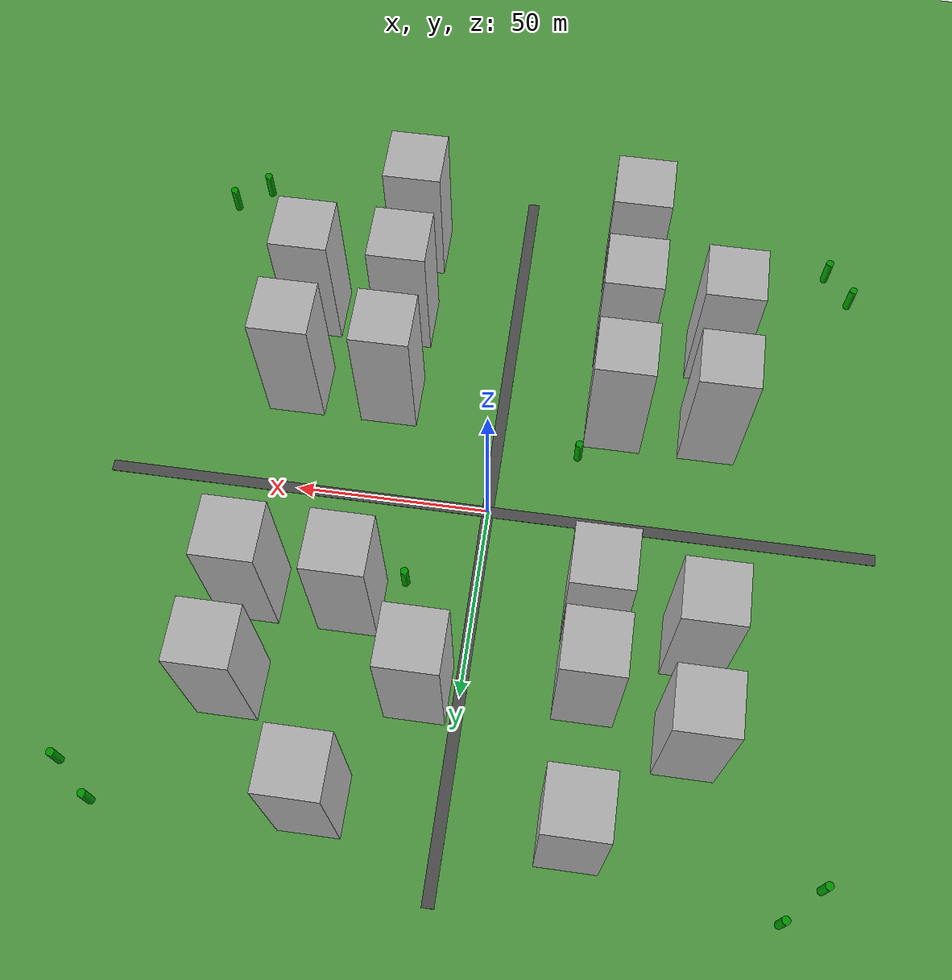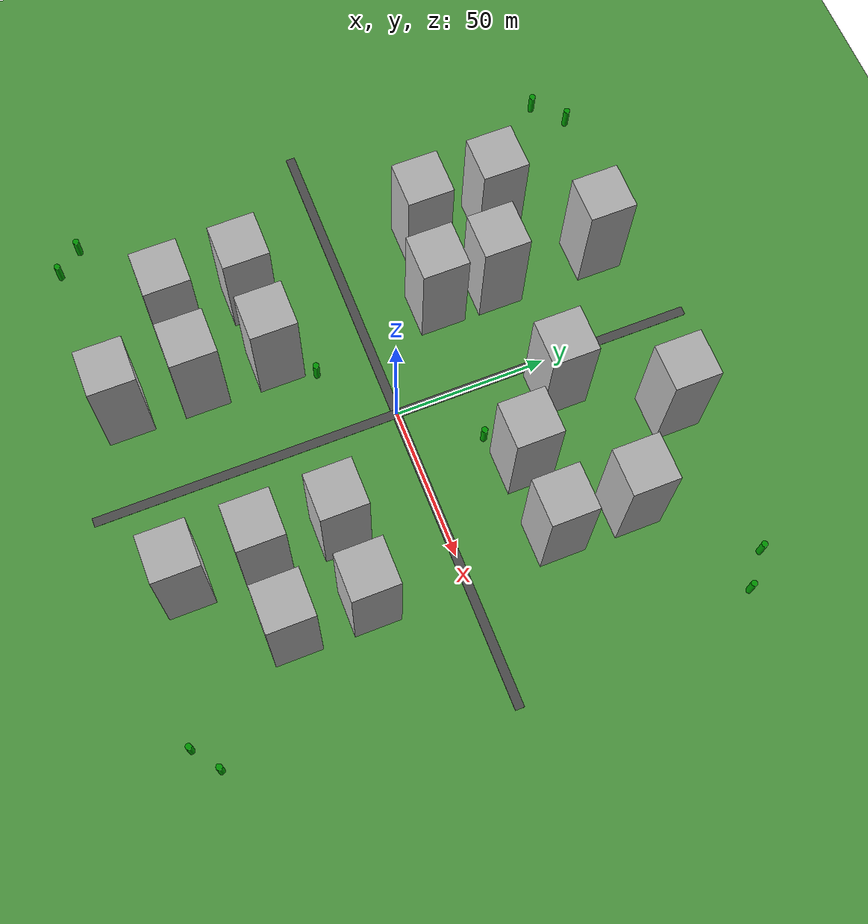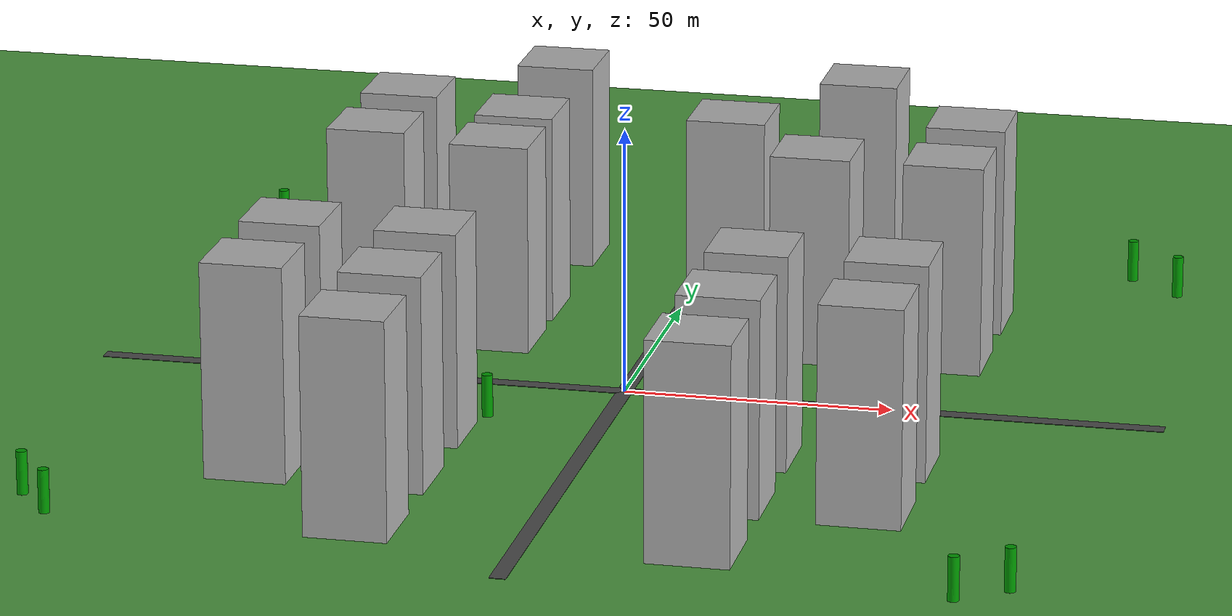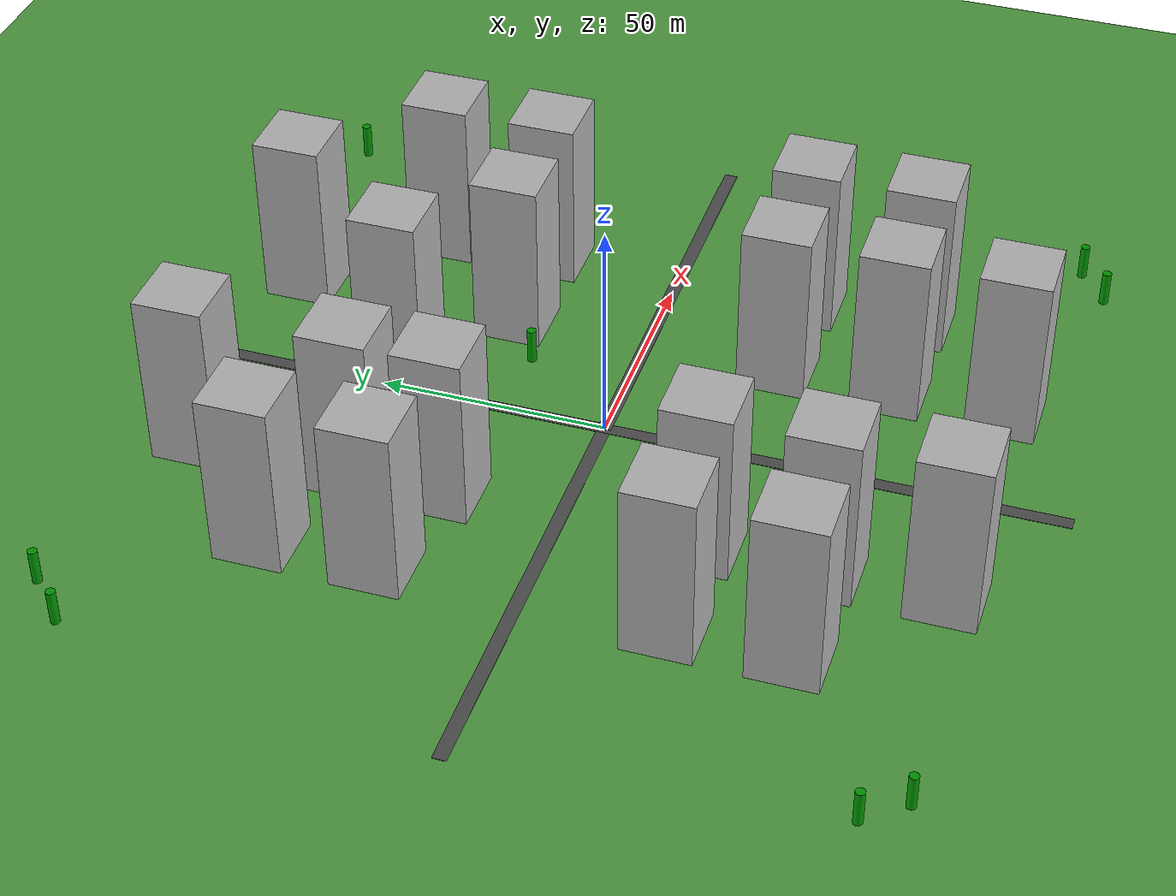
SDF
<sdf version="1.6">
 <world name="building_world">
  <model name="grass_field">
   <static>true</static>
   <link name="link">
    <collision name="collision">
     <geometry><plane><normal>0 0 1</normal><size>200 200</size></plane></geometry>
    </collision>
    <visual name="visual">
     <geometry><plane><normal>0 0 1</normal><size>200 200</size></plane></geometry>
     <material>
      <script><uri>file://media/materials/scripts/gazebo.material</uri><name>Gazebo/Grass</name></script>
     </material>
    </visual>
   </link>
  </model>
  <include><uri>model://sun</uri></include>
  <scene>
   <ambient>0.8 0.8 0.8 1</ambient>
   <background>0.7 0.7 0.7 1</background>
   <shadows>true</shadows>
   <wind><direction>1 0 0</direction><speed>1.5</speed></wind>
   <humidity>0.5</humidity>
  </scene>
  <model name="building1">
   <pose>30 30 20 0 0 0</pose>
   <static>true</static>
   <link name="link">
    <collision name="collision"><geometry><box><size>15 15 40</size></box></geometry></collision>
    <visual name="visual">
     <geometry><box><size>15 15 40</size></box></geometry>
     <material><ambient>0.7 0.7 0.7 1</ambient></material>
    </visual>
   </link>
  </model>
  <model name="building2">
   <pose>10 50 20 0 0 0</pose>
   <static>true</static>
   <link name="link">
    <collision name="collision"><geometry><box><size>15 15 40</size></box></geometry></collision>
    <visual name="visual">
     <geometry><box><size>15 15 40</size></box></geometry>
     <material><ambient>0.7 0.7 0.7 1</ambient></material>
    </visual>
   </link>
  </model>
  <model name="building3">
   <pose>30 80 20 0 0 0</pose>
   <static>true</static>
   <link name="link">
    <collision name="collision"><geometry><box><size>15 15 40</size></box></geometry></collision>
    <visual name="visual">
     <geometry><box><size>15 15 40</size></box></geometry>
     <material><ambient>0.7 0.7 0.7 1</ambient></material>
    </visual>
   </link>
  </model>
  <model name="building4">
   <pose>55 30 20 0 0 0</pose>
   <static>true</static>
   <link name="link">
    <collision name="collision"><geometry><box><size>15 15 40</size></box></geometry></collision>
    <visual name="visual">
     <geometry><box><size>15 15 40</size></box></geometry>
     <material><ambient>0.7 0.7 0.7 1</ambient></material>
    </visual>
   </link>
  </model>
  <model name="building5">
   <pose>55 55 20 0 0 0</pose>
   <static>true</static>
   <link name="link">
    <collision name="collision"><geometry><box><size>15 15 40</size></box></geometry></collision>
    <visual name="visual">
     <geometry><box><size>15 15 40</size></box></geometry>
     <material><ambient>0.7 0.7 0.7 1</ambient></material>
    </visual>
   </link>
  </model>
  <model name="building6">
   <pose>-30 25 20 0 0 0</pose>
   <static>true</static>
   <link name="link">
    <collision name="collision"><geometry><box><size>15 15 40</size></box></geometry></collision>
    <visual name="visual">
     <geometry><box><size>15 15 40</size></box></geometry>
     <material><ambient>0.7 0.7 0.7 1</ambient></material>
    </visual>
   </link>
  </model>
  <model name="building7">
   <pose>-30 45 20 0 0 0</pose>
   <static>true</static>
   <link name="link">
    <collision name="collision"><geometry><box><size>15 15 40</size></box></geometry></collision>
    <visual name="visual">
     <geometry><box><size>15 15 40</size></box></geometry>
     <material><ambient>0.7 0.7 0.7 1</ambient></material>
    </visual>
   </link>
  </model>
  <model name="building8">
   <pose>-30 80 20 0 0 0</pose>
   <static>true</static>
   <link name="link">
    <collision name="collision"><geometry><box><size>15 15 40</size></box></geometry></collision>
    <visual name="visual">
     <geometry><box><size>15 15 40</size></box></geometry>
     <material><ambient>0.7 0.7 0.7 1</ambient></material>
    </visual>
   </link>
  </model>
  <model name="building9">
   <pose>-55 30 20 0 0 0</pose>
   <static>true</static>
   <link name="link">
    <collision name="collision"><geometry><box><size>15 15 40</size></box></geometry></collision>
    <visual name="visual">
     <geometry><box><size>15 15 40</size></box></geometry>
     <material><ambient>0.7 0.7 0.7 1</ambient></material>
    </visual>
   </link>
  </model>
  <model name="building10">
   <pose>-55 55 20 0 0 0</pose>
   <static>true</static>
   <link name="link">
    <collision name="collision"><geometry><box><size>15 15 40</size></box></geometry></collision>
    <visual name="visual">
     <geometry><box><size>15 15 40</size></box></geometry>
     <material><ambient>0.7 0.7 0.7 1</ambient></material>
    </visual>
   </link>
  </model>
  <model name="building11">
   <pose>30 -30 20 0 0 0</pose>
   <static>true</static>
   <link name="link">
    <collision name="collision"><geometry><box><size>15 15 40</size></box></geometry></collision>
    <visual name="visual">
     <geometry><box><size>15 15 40</size></box></geometry>
     <material><ambient>0.7 0.7 0.7 1</ambient></material>
    </visual>
   </link>
  </model>
  <model name="building12">
   <pose>30 -55 20 0 0 0</pose>
   <static>true</static>
   <link name="link">
    <collision name="collision"><geometry><box><size>15 15 40</size></box></geometry></collision>
    <visual name="visual">
     <geometry><box><size>15 15 40</size></box></geometry>
     <material><ambient>0.7 0.7 0.7 1</ambient></material>
    </visual>
   </link>
  </model>
  <model name="building13">
   <pose>30 -80 20 0 0 0</pose>
   <static>true</static>
   <link name="link">
    <collision name="collision"><geometry><box><size>15 15 40</size></box></geometry></collision>
    <visual name="visual">
     <geometry><box><size>15 15 40</size></box></geometry>
     <material><ambient>0.7 0.7 0.7 1</ambient></material>
    </visual>
   </link>
  </model>
  <model name="building14">
   <pose>55 -30 20 0 0 0</pose>
   <static>true</static>
   <link name="link">
    <collision name="collision"><geometry><box><size>15 15 40</size></box></geometry></collision>
    <visual name="visual">
     <geometry><box><size>15 15 40</size></box></geometry>
     <material><ambient>0.7 0.7 0.7 1</ambient></material>
    </visual>
   </link>
  </model>
  <model name="building15">
   <pose>55 -55 20 0 0 0</pose>
   <static>true</static>
   <link name="link">
    <collision name="collision"><geometry><box><size>15 15 40</size></box></geometry></collision>
    <visual name="visual">
     <geometry><box><size>15 15 40</size></box></geometry>
     <material><ambient>0.7 0.7 0.7 1</ambient></material>
    </visual>
   </link>
  </model>
  <model name="building16">
   <pose>-30 -30 20 0 0 0</pose>
   <static>true</static>
   <link name="link">
    <collision name="collision"><geometry><box><size>15 15 40</size></box></geometry></collision>
    <visual name="visual">
     <geometry><box><size>15 15 40</size></box></geometry>
     <material><ambient>0.7 0.7 0.7 1</ambient></material>
    </visual>
   </link>
  </model>
  <model name="building17">
   <pose>-30 -55 20 0 0 0</pose>
   <static>true</static>
   <link name="link">
    <collision name="collision"><geometry><box><size>15 15 40</size></box></geometry></collision>
    <visual name="visual">
     <geometry><box><size>15 15 40</size></box></geometry>
     <material><ambient>0.7 0.7 0.7 1</ambient></material>
    </visual>
   </link>
  </model>
  <model name="building18">
   <pose>-30 -80 20 0 0 0</pose>
   <static>true</static>
   <link name="link">
    <collision name="collision"><geometry><box><size>15 15 40</size></box></geometry></collision>
    <visual name="visual">
     <geometry><box><size>15 15 40</size></box></geometry>
     <material><ambient>0.7 0.7 0.7 1</ambient></material>
    </visual>
   </link>
  </model>
  <model name="building19">
   <pose>-55 -30 20 0 0 0</pose>
   <static>true</static>
   <link name="link">
    <collision name="collision"><geometry><box><size>15 15 40</size></box></geometry></collision>
    <visual name="visual">
     <geometry><box><size>15 15 40</size></box></geometry>
     <material><ambient>0.7 0.7 0.7 1</ambient></material>
    </visual>
   </link>
  </model>
  <model name="building20">
   <pose>-55 -55 20 0 0 0</pose>
   <static>true</static>
   <link name="link">
    <collision name="collision"><geometry><box><size>15 15 40</size></box></geometry></collision>
    <visual name="visual">
     <geometry><box><size>15 15 40</size></box></geometry>
     <material><ambient>0.7 0.7 0.7 1</ambient></material>
    </visual>
   </link>
  </model>
  <model name="road_horizontal">
   <pose>0 0 0.02 0 0 0</pose>
   <static>true</static>
   <link name="link">
    <collision name="collision"><geometry><box><size>200 3 0.1</size></box></geometry></collision>
    <visual name="visual">
     <geometry><box><size>200 3 0.1</size></box></geometry>
     <material><ambient>0.3 0.3 0.3 1</ambient></material>
    </visual>
   </link>
  </model>
  <model name="road_vertical">
   <pose>0 0 0.02 0 0 1.5708</pose>
   <static>true</static>
   <link name="link">
    <collision name="collision"><geometry><box><size>200 3 0.1</size></box></geometry></collision>
    <visual name="visual">
     <geometry><box><size>200 3 0.1</size></box></geometry>
     <material><ambient>0.3 0.3 0.3 1</ambient></material>
    </visual>
   </link>
  </model>
  <model name="tree1">
   <pose>82.3 86.7 4 0 0 0</pose>
   <static>true</static>
   <link name="link">
    <collision name="collision">
     <geometry><cylinder><radius>1</radius><length>8</length></cylinder></geometry>
    </collision>
    <visual name="visual">
     <geometry><cylinder><radius>1</radius><length>8</length></cylinder></geometry>
     <material><ambient>0 0.6 0 1</ambient></material>
    </visual>
   </link>
  </model>
  <model name="tree2">
   <pose>92.1 78.4 4 0 0 0</pose>
   <static>true</static>
   <link name="link">
    <collision name="collision">
     <geometry><cylinder><radius>1</radius><length>8</length></cylinder></geometry>
    </collision>
    <visual name="visual">
     <geometry><cylinder><radius>1</radius><length>8</length></cylinder></geometry>
     <material><ambient>0 0.6 0 1</ambient></material>
    </visual>
   </link>
  </model>
  <model name="tree3">
   <pose>-88.5 83.9 4 0 0 0</pose>
   <static>true</static>
   <link name="link">
    <collision name="collision">
     <geometry><cylinder><radius>1</radius><length>8</length></cylinder></geometry>
    </collision>
    <visual name="visual">
     <geometry><cylinder><radius>1</radius><length>8</length></cylinder></geometry>
     <material><ambient>0 0.6 0 1</ambient></material>
    </visual>
   </link>
  </model>
  <model name="tree4">
   <pose>-79.2 92.6 4 0 0 0</pose>
   <static>true</static>
   <link name="link">
    <collision name="collision">
     <geometry><cylinder><radius>1</radius><length>8</length></cylinder></geometry>
    </collision>
    <visual name="visual">
     <geometry><cylinder><radius>1</radius><length>8</length></cylinder></geometry>
     <material><ambient>0 0.6 0 1</ambient></material>
    </visual>
   </link>
  </model>
  <model name="tree5">
   <pose>85.4 -87.2 4 0 0 0</pose>
   <static>true</static>
   <link name="link">
    <collision name="collision">
     <geometry><cylinder><radius>1</radius><length>8</length></cylinder></geometry>
    </collision>
    <visual name="visual">
     <geometry><cylinder><radius>1</radius><length>8</length></cylinder></geometry>
     <material><ambient>0 0.6 0 1</ambient></material>
    </visual>
   </link>
  </model>
  <model name="tree6">
   <pose>76.8 -93.5 4 0 0 0</pose>
   <static>true</static>
   <link name="link">
    <collision name="collision">
     <geometry><cylinder><radius>1</radius><length>8</length></cylinder></geometry>
    </collision>
    <visual name="visual">
     <geometry><cylinder><radius>1</radius><length>8</length></cylinder></geometry>
     <material><ambient>0 0.6 0 1</ambient></material>
    </visual>
   </link>
  </model>
  <model name="tree7">
   <pose>-84.7 -85.1 4 0 0 0</pose>
   <static>true</static>
   <link name="link">
    <collision name="collision">
     <geometry><cylinder><radius>1</radius><length>8</length></cylinder></geometry>
    </collision>
    <visual name="visual">
     <geometry><cylinder><radius>1</radius><length>8</length></cylinder></geometry>
     <material><ambient>0 0.6 0 1</ambient></material>
    </visual>
   </link>
  </model>
  <model name="tree8">
   <pose>-91.3 -76.8 4 0 0 0</pose>
   <static>true</static>
   <link name="link">
    <collision name="collision">
     <geometry><cylinder><radius>1</radius><length>8</length></cylinder></geometry>
    </collision>
    <visual name="visual">
     <geometry><cylinder><radius>1</radius><length>8</length></cylinder></geometry>
     <material><ambient>0 0.6 0 1</ambient></material>
    </visual>
   </link>
  </model>
  <model name="tree9">
   <pose>17.8 22.4 4 0 0 0</pose>
   <static>true</static>
   <link name="link">
    <collision name="collision">
     <geometry><cylinder><radius>1</radius><length>8</length></cylinder></geometry>
    </collision>
    <visual name="visual">
     <geometry><cylinder><radius>1</radius><length>8</length></cylinder></geometry>
     <material><ambient>0 0.6 0 1</ambient></material>
    </visual>
   </link>
  </model>
  <model name="tree10">
   <pose>-21.5 -18.9 4 0 0 0</pose>
   <static>true</static>
   <link name="link">
    <collision name="collision">
     <geometry><cylinder><radius>1</radius><length>8</length></cylinder></geometry>
    </collision>
    <visual name="visual">
     <geometry><cylinder><radius>1</radius><length>8</length></cylinder></geometry>
     <material><ambient>0 0.6 0 1</ambient></material>
    </visual>
   </link>
  </model>
 </world>
</sdf>
